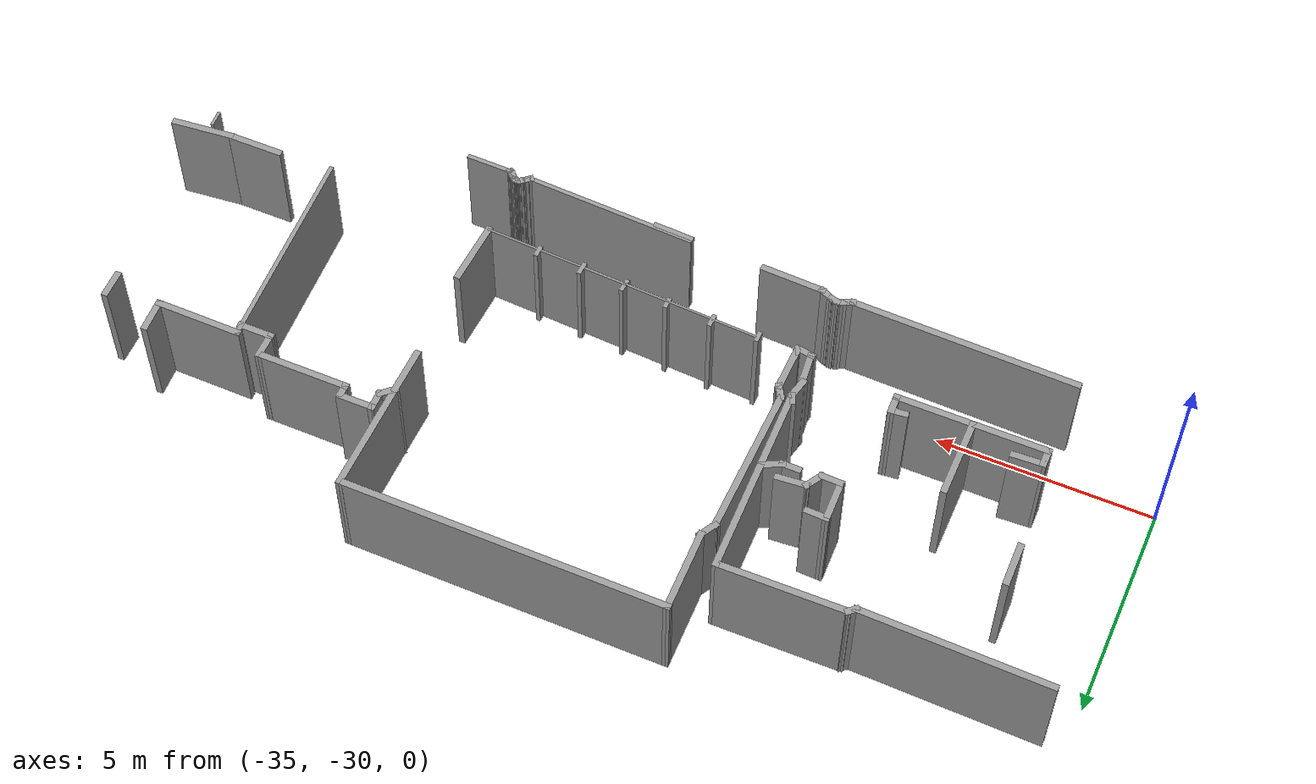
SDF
<sdf version="1.4">
 <model name="3ne_real">
  <pose>-14.229 -33.4428 0 0 -0 0</pose>
  <link name="Wall_203">
   <collision name="Wall_203_Collision">
    <geometry><box><size>0.817392 0.15 2.5</size></box></geometry>
    <pose>0 0 1.25 0 -0 0</pose>
   </collision>
   <visual name="Wall_203_Visual">
    <pose>0 0 1.25 0 -0 0</pose>
    <geometry><box><size>0.817392 0.15 2.5</size></box></geometry>
    <material>
     <script><uri>file://media/materials/scripts/gazebo.material</uri><name>Gazebo/Grey</name></script>
     <ambient>1 1 1 1</ambient>
    </material>
    <meta><layer>0</layer></meta>
   </visual>
   <pose>0.525288 8.69575 0 0 -0 -1.5316</pose>
  </link>
  <link name="Wall_204">
   <collision name="Wall_204_Collision">
    <geometry><box><size>2.05915 0.15 2.5</size></box></geometry>
    <pose>0 0 1.25 0 -0 0</pose>
   </collision>
   <visual name="Wall_204_Visual">
    <pose>0 0 1.25 0 -0 0</pose>
    <geometry><box><size>2.05915 0.15 2.5</size></box></geometry>
    <material>
     <script><uri>file://media/materials/scripts/gazebo.material</uri><name>Gazebo/Grey</name></script>
     <ambient>1 1 1 1</ambient>
    </material>
    <meta><layer>0</layer></meta>
   </visual>
   <pose>-0.416332 8.36903 0 0 -0 3.13455</pose>
  </link>
  <link name="Wall_206">
   <collision name="Wall_206_Collision">
    <geometry><box><size>0.673043 0.15 2.5</size></box></geometry>
    <pose>0 0 1.25 0 -0 0</pose>
   </collision>
   <visual name="Wall_206_Visual">
    <pose>0 0 1.25 0 -0 0</pose>
    <geometry><box><size>0.673043 0.15 2.5</size></box></geometry>
    <material>
     <script><uri>file://media/materials/scripts/gazebo.material</uri><name>Gazebo/Grey</name></script>
     <ambient>1 1 1 1</ambient>
    </material>
    <meta><layer>0</layer></meta>
   </visual>
   <pose>1.72813 8.32318 0 0 -0 -1.5714</pose>
  </link>
  <link name="Wall_212">
   <collision name="Wall_212_Collision">
    <geometry><box><size>1.36607 0.15 2.5</size></box></geometry>
    <pose>0 0 1.25 0 -0 0</pose>
   </collision>
   <visual name="Wall_212_Visual">
    <pose>0 0 1.25 0 -0 0</pose>
    <geometry><box><size>1.36607 0.15 2.5</size></box></geometry>
    <material>
     <script><uri>file://media/materials/scripts/gazebo.material</uri><name>Gazebo/Grey</name></script>
     <ambient>1 1 1 1</ambient>
    </material>
    <meta><layer>0</layer></meta>
   </visual>
   <pose>0.662587 3.68107 0 0 -0 0</pose>
  </link>
  <link name="Wall_213">
   <collision name="Wall_213_Collision">
    <geometry><box><size>1.47714 0.15 2.5</size></box></geometry>
    <pose>0 0 1.25 0 -0 0</pose>
   </collision>
   <visual name="Wall_213_Visual">
    <pose>0 0 1.25 0 -0 0</pose>
    <geometry><box><size>1.47714 0.15 2.5</size></box></geometry>
    <material>
     <script><uri>file://media/materials/scripts/gazebo.material</uri><name>Gazebo/Grey</name></script>
     <ambient>1 1 1 1</ambient>
    </material>
    <meta><layer>0</layer></meta>
   </visual>
   <pose>1.93097 3.74645 0 0 -0 0.098688</pose>
  </link>
  <link name="Wall_217">
   <collision name="Wall_217_Collision">
    <geometry><box><size>0.38327 0.07 2.5</size></box></geometry>
    <pose>0 0 1.25 0 -0 0</pose>
   </collision>
   <visual name="Wall_217_Visual">
    <pose>0 0 1.25 0 -0 0</pose>
    <geometry><box><size>0.38327 0.07 2.5</size></box></geometry>
    <material>
     <script><uri>file://media/materials/scripts/gazebo.material</uri><name>Gazebo/Grey</name></script>
     <ambient>1 1 1 1</ambient>
    </material>
    <meta><layer>0</layer></meta>
   </visual>
   <pose>1.80047 3.38025 0 0 -0 -1.52929</pose>
  </link>
  <link name="Wall_221">
   <collision name="Wall_221_Collision">
    <geometry><box><size>4.85957 0.1 2.5</size></box></geometry>
    <pose>0 0 1.25 0 -0 0</pose>
   </collision>
   <visual name="Wall_221_Visual">
    <pose>0 0 1.25 0 -0 0</pose>
    <geometry><box><size>4.85957 0.1 2.5</size></box></geometry>
    <material>
     <script><uri>file://media/materials/scripts/gazebo.material</uri><name>Gazebo/Grey</name></script>
     <ambient>1 1 1 1</ambient>
    </material>
    <meta><layer>0</layer></meta>
   </visual>
   <pose>-1.30003 5.99725 0 0 -0 -1.54095</pose>
  </link>
  <link name="Wall_226">
   <collision name="Wall_226_Collision">
    <geometry><box><size>0.863671 0.15 2.5</size></box></geometry>
    <pose>0 0 1.25 0 -0 0</pose>
   </collision>
   <visual name="Wall_226_Visual">
    <pose>0 0 1.25 0 -0 0</pose>
    <geometry><box><size>0.863671 0.15 2.5</size></box></geometry>
    <material>
     <script><uri>file://media/materials/scripts/gazebo.material</uri><name>Gazebo/Grey</name></script>
     <ambient>1 1 1 1</ambient>
    </material>
    <meta><layer>0</layer></meta>
   </visual>
   <pose>-1.71326 8.17109 0 0 -0 3.14159</pose>
  </link>
  <link name="Wall_227">
   <collision name="Wall_227_Collision">
    <geometry><box><size>0.663166 0.15 2.5</size></box></geometry>
    <pose>0 0 1.25 0 -0 0</pose>
   </collision>
   <visual name="Wall_227_Visual">
    <pose>0 0 1.25 0 -0 0</pose>
    <geometry><box><size>0.663166 0.15 2.5</size></box></geometry>
    <material>
     <script><uri>file://media/materials/scripts/gazebo.material</uri><name>Gazebo/Grey</name></script>
     <ambient>1 1 1 1</ambient>
    </material>
    <meta><layer>0</layer></meta>
   </visual>
   <pose>-2.06638 8.42757 0 0 -0 1.55631</pose>
  </link>
  <link name="Wall_228">
   <collision name="Wall_228_Collision">
    <geometry><box><size>2.2018 0.15 2.5</size></box></geometry>
    <pose>0 0 1.25 0 -0 0</pose>
   </collision>
   <visual name="Wall_228_Visual">
    <pose>0 0 1.25 0 -0 0</pose>
    <geometry><box><size>2.2018 0.15 2.5</size></box></geometry>
    <material>
     <script><uri>file://media/materials/scripts/gazebo.material</uri><name>Gazebo/Grey</name></script>
     <ambient>1 1 1 1</ambient>
    </material>
    <meta><layer>0</layer></meta>
   </visual>
   <pose>-3.08856 8.68404 0 0 -0 3.14159</pose>
  </link>
  <link name="Wall_230">
   <collision name="Wall_230_Collision">
    <geometry><box><size>0.402758 0.15 2.5</size></box></geometry>
    <pose>0 0 1.25 0 -0 0</pose>
   </collision>
   <visual name="Wall_230_Visual">
    <pose>0 0 1.25 0 -0 0</pose>
    <geometry><box><size>0.402758 0.15 2.5</size></box></geometry>
    <material>
     <script><uri>file://media/materials/scripts/gazebo.material</uri><name>Gazebo/Grey</name></script>
     <ambient>1 1 1 1</ambient>
    </material>
    <meta><layer>0</layer></meta>
   </visual>
   <pose>-4.11446 8.81042 0 0 -0 1.5708</pose>
  </link>
  <link name="Wall_231">
   <collision name="Wall_231_Collision">
    <geometry><box><size>0.900841 0.15 2.5</size></box></geometry>
    <pose>0 0 1.25 0 -0 0</pose>
   </collision>
   <visual name="Wall_231_Visual">
    <pose>0 0 1.25 0 -0 0</pose>
    <geometry><box><size>0.900841 0.15 2.5</size></box></geometry>
    <material>
     <script><uri>file://media/materials/scripts/gazebo.material</uri><name>Gazebo/Grey</name></script>
     <ambient>1 1 1 1</ambient>
    </material>
    <meta><layer>0</layer></meta>
   </visual>
   <pose>-4.48988 8.9368 0 0 -0 3.14159</pose>
  </link>
  <link name="Wall_232">
   <collision name="Wall_232_Collision">
    <geometry><box><size>0.521704 0.15 2.5</size></box></geometry>
    <pose>0 0 1.25 0 -0 0</pose>
   </collision>
   <visual name="Wall_232_Visual">
    <pose>0 0 1.25 0 -0 0</pose>
    <geometry><box><size>0.521704 0.15 2.5</size></box></geometry>
    <material>
     <script><uri>file://media/materials/scripts/gazebo.material</uri><name>Gazebo/Grey</name></script>
     <ambient>1 1 1 1</ambient>
    </material>
    <meta><layer>0</layer></meta>
   </visual>
   <pose>-4.86531 8.75095 0 0 -0 -1.5708</pose>
  </link>
  <link name="Wall_233">
   <collision name="Wall_233_Collision">
    <geometry><box><size>0.487084 0.15 2.5</size></box></geometry>
    <pose>0 0 1.25 0 -0 0</pose>
   </collision>
   <visual name="Wall_233_Visual">
    <pose>0 0 1.25 0 -0 0</pose>
    <geometry><box><size>0.487084 0.15 2.5</size></box></geometry>
    <material>
     <script><uri>file://media/materials/scripts/gazebo.material</uri><name>Gazebo/Grey</name></script>
     <ambient>1 1 1 1</ambient>
    </material>
    <meta><layer>0</layer></meta>
   </visual>
   <pose>-4.99168 8.45359 0 0 -0 -2.41861</pose>
  </link>
  <link name="Wall_234">
   <collision name="Wall_234_Collision">
    <geometry><box><size>1.15404 0.15 2.5</size></box></geometry>
    <pose>0 0 1.25 0 -0 0</pose>
   </collision>
   <visual name="Wall_234_Visual">
    <pose>0 0 1.25 0 -0 0</pose>
    <geometry><box><size>1.15404 0.15 2.5</size></box></geometry>
    <material>
     <script><uri>file://media/materials/scripts/gazebo.material</uri><name>Gazebo/Grey</name></script>
     <ambient>1 1 1 1</ambient>
    </material>
    <meta><layer>0</layer></meta>
   </visual>
   <pose>-5.13293 7.84027 0 0 -0 -1.60042</pose>
  </link>
  <link name="Wall_237">
   <collision name="Wall_237_Collision">
    <geometry><box><size>1.54614 0.15 2.5</size></box></geometry>
    <pose>0 0 1.25 0 -0 0</pose>
   </collision>
   <visual name="Wall_237_Visual">
    <pose>0 0 1.25 0 -0 0</pose>
    <geometry><box><size>1.54614 0.15 2.5</size></box></geometry>
    <material>
     <script><uri>file://media/materials/scripts/gazebo.material</uri><name>Gazebo/Grey</name></script>
     <ambient>1 1 1 1</ambient>
    </material>
    <meta><layer>0</layer></meta>
   </visual>
   <pose>-5.12853 4.44565 0 0 -0 -1.6317</pose>
  </link>
  <link name="Wall_239">
   <collision name="Wall_239_Collision">
    <geometry><box><size>6.5192 0.05 2.5</size></box></geometry>
    <pose>0 0 1.25 0 -0 0</pose>
   </collision>
   <visual name="Wall_239_Visual">
    <pose>0 0 1.25 0 -0 0</pose>
    <geometry><box><size>6.5192 0.05 2.5</size></box></geometry>
    <material>
     <script><uri>file://media/materials/scripts/gazebo.material</uri><name>Gazebo/Grey</name></script>
     <ambient>1 1 1 1</ambient>
    </material>
    <meta><layer>0</layer></meta>
   </visual>
   <pose>-8.40203 3.90375 0 0 -0 3.09366</pose>
  </link>
  <link name="Wall_241">
   <collision name="Wall_241_Collision">
    <geometry><box><size>0.267638 0.1 2.5</size></box></geometry>
    <pose>0 0 1.25 0 -0 0</pose>
   </collision>
   <visual name="Wall_241_Visual">
    <pose>0 0 1.25 0 -0 0</pose>
    <geometry><box><size>0.267638 0.1 2.5</size></box></geometry>
    <material>
     <script><uri>file://media/materials/scripts/gazebo.material</uri><name>Gazebo/Grey</name></script>
     <ambient>1 1 1 1</ambient>
    </material>
    <meta><layer>0</layer></meta>
   </visual>
   <pose>-11.67 4.03975 0 0 -0 -1.5708</pose>
  </link>
  <link name="Wall_243">
   <collision name="Wall_243_Collision">
    <geometry><box><size>0.313133 0.1 2.5</size></box></geometry>
    <pose>0 0 1.25 0 -0 0</pose>
   </collision>
   <visual name="Wall_243_Visual">
    <pose>0 0 1.25 0 -0 0</pose>
    <geometry><box><size>0.313133 0.1 2.5</size></box></geometry>
    <material>
     <script><uri>file://media/materials/scripts/gazebo.material</uri><name>Gazebo/Grey</name></script>
     <ambient>1 1 1 1</ambient>
    </material>
    <meta><layer>0</layer></meta>
   </visual>
   <pose>-10.6005 4.04325 0 0 -0 -1.60365</pose>
  </link>
  <link name="Wall_245">
   <collision name="Wall_245_Collision">
    <geometry><box><size>0.268547 0.1 2.5</size></box></geometry>
    <pose>0 0 1.25 0 -0 0</pose>
   </collision>
   <visual name="Wall_245_Visual">
    <pose>0 0 1.25 0 -0 0</pose>
    <geometry><box><size>0.268547 0.1 2.5</size></box></geometry>
    <material>
     <script><uri>file://media/materials/scripts/gazebo.material</uri><name>Gazebo/Grey</name></script>
     <ambient>1 1 1 1</ambient>
    </material>
    <meta><layer>0</layer></meta>
   </visual>
   <pose>-9.54003 4.00175 0 0 -0 -1.6065</pose>
  </link>
  <link name="Wall_247">
   <collision name="Wall_247_Collision">
    <geometry><box><size>0.320334 0.1 2.5</size></box></geometry>
    <pose>0 0 1.25 0 -0 0</pose>
   </collision>
   <visual name="Wall_247_Visual">
    <pose>0 0 1.25 0 -0 0</pose>
    <geometry><box><size>0.320334 0.1 2.5</size></box></geometry>
    <material>
     <script><uri>file://media/materials/scripts/gazebo.material</uri><name>Gazebo/Grey</name></script>
     <ambient>1 1 1 1</ambient>
    </material>
    <meta><layer>0</layer></meta>
   </visual>
   <pose>-8.50603 3.94325 0 0 -0 -1.66187</pose>
  </link>
  <link name="Wall_249">
   <collision name="Wall_249_Collision">
    <geometry><box><size>0.314125 0.1 2.5</size></box></geometry>
    <pose>0 0 1.25 0 -0 0</pose>
   </collision>
   <visual name="Wall_249_Visual">
    <pose>0 0 1.25 0 -0 0</pose>
    <geometry><box><size>0.314125 0.1 2.5</size></box></geometry>
    <material>
     <script><uri>file://media/materials/scripts/gazebo.material</uri><name>Gazebo/Grey</name></script>
     <ambient>1 1 1 1</ambient>
    </material>
    <meta><layer>0</layer></meta>
   </visual>
   <pose>-7.47453 3.89475 0 0 -0 -1.63147</pose>
  </link>
  <link name="Wall_251">
   <collision name="Wall_251_Collision">
    <geometry><box><size>0.280692 0.1 2.5</size></box></geometry>
    <pose>0 0 1.25 0 -0 0</pose>
   </collision>
   <visual name="Wall_251_Visual">
    <pose>0 0 1.25 0 -0 0</pose>
    <geometry><box><size>0.280692 0.1 2.5</size></box></geometry>
    <material>
     <script><uri>file://media/materials/scripts/gazebo.material</uri><name>Gazebo/Grey</name></script>
     <ambient>1 1 1 1</ambient>
    </material>
    <meta><layer>0</layer></meta>
   </visual>
   <pose>-6.41153 3.85225 0 0 -0 -1.60945</pose>
  </link>
  <link name="Wall_253">
   <collision name="Wall_253_Collision">
    <geometry><box><size>2.64347 0.15 2.5</size></box></geometry>
    <pose>0 0 1.25 0 -0 0</pose>
   </collision>
   <visual name="Wall_253_Visual">
    <pose>0 0 1.25 0 -0 0</pose>
    <geometry><box><size>2.64347 0.15 2.5</size></box></geometry>
    <material>
     <script><uri>file://media/materials/scripts/gazebo.material</uri><name>Gazebo/Grey</name></script>
     <ambient>1 1 1 1</ambient>
    </material>
    <meta><layer>0</layer></meta>
   </visual>
   <pose>-5.09026 9.5885 0 0 -0 1.54849</pose>
  </link>
  <link name="Wall_254">
   <collision name="Wall_254_Collision">
    <geometry><box><size>7.53304 0.15 2.5</size></box></geometry>
    <pose>0 0 1.25 0 -0 0</pose>
   </collision>
   <visual name="Wall_254_Visual">
    <pose>0 0 1.25 0 -0 0</pose>
    <geometry><box><size>7.53304 0.15 2.5</size></box></geometry>
    <material>
     <script><uri>file://media/materials/scripts/gazebo.material</uri><name>Gazebo/Grey</name></script>
     <ambient>1 1 1 1</ambient>
    </material>
    <meta><layer>0</layer></meta>
   </visual>
   <pose>-8.75396 10.8462 0 0 -0 3.13853</pose>
  </link>
  <link name="Wall_255">
   <collision name="Wall_255_Collision">
    <geometry><box><size>1.97045 0.15 2.5</size></box></geometry>
    <pose>0 0 1.25 0 -0 0</pose>
   </collision>
   <visual name="Wall_255_Visual">
    <pose>0 0 1.25 0 -0 0</pose>
    <geometry><box><size>1.97045 0.15 2.5</size></box></geometry>
    <material>
     <script><uri>file://media/materials/scripts/gazebo.material</uri><name>Gazebo/Grey</name></script>
     <ambient>1 1 1 1</ambient>
    </material>
    <meta><layer>0</layer></meta>
   </visual>
   <pose>-12.4342 9.94738 0 0 -0 -1.55838</pose>
  </link>
  <link name="Wall_256">
   <collision name="Wall_256_Collision">
    <geometry><box><size>0.514617 0.15 2.5</size></box></geometry>
    <pose>0 0 1.25 0 -0 0</pose>
   </collision>
   <visual name="Wall_256_Visual">
    <pose>0 0 1.25 0 -0 0</pose>
    <geometry><box><size>0.514617 0.15 2.5</size></box></geometry>
    <material>
     <script><uri>file://media/materials/scripts/gazebo.material</uri><name>Gazebo/Grey</name></script>
     <ambient>1 1 1 1</ambient>
    </material>
    <meta><layer>0</layer></meta>
   </visual>
   <pose>-12.5133 8.87894 0 0 -0 -2.08994</pose>
  </link>
  <link name="Wall_258">
   <collision name="Wall_258_Collision">
    <geometry><box><size>3.57672 0.15 2.5</size></box></geometry>
    <pose>0 0 1.25 0 -0 0</pose>
   </collision>
   <visual name="Wall_258_Visual">
    <pose>0 0 1.25 0 -0 0</pose>
    <geometry><box><size>3.57672 0.15 2.5</size></box></geometry>
    <material>
     <script><uri>file://media/materials/scripts/gazebo.material</uri><name>Gazebo/Grey</name></script>
     <ambient>1 1 1 1</ambient>
    </material>
    <meta><layer>0</layer></meta>
   </visual>
   <pose>-12.649 7.00774 0 0 -0 -1.59719</pose>
  </link>
  <link name="Wall_259">
   <collision name="Wall_259_Collision">
    <geometry><box><size>0.448709 0.15 2.5</size></box></geometry>
    <pose>0 0 1.25 0 -0 0</pose>
   </collision>
   <visual name="Wall_259_Visual">
    <pose>0 0 1.25 0 -0 0</pose>
    <geometry><box><size>0.448709 0.15 2.5</size></box></geometry>
    <material>
     <script><uri>file://media/materials/scripts/gazebo.material</uri><name>Gazebo/Grey</name></script>
     <ambient>1 1 1 1</ambient>
    </material>
    <meta><layer>0</layer></meta>
   </visual>
   <pose>-12.6207 5.16482 0 0 -0 -1.05635</pose>
  </link>
  <link name="Wall_260">
   <collision name="Wall_260_Collision">
    <geometry><box><size>1.1 0.15 2.5</size></box></geometry>
    <pose>0 0 1.25 0 -0 0</pose>
   </collision>
   <visual name="Wall_260_Visual">
    <pose>0 0 1.25 0 -0 0</pose>
    <geometry><box><size>1.1 0.15 2.5</size></box></geometry>
    <material>
     <script><uri>file://media/materials/scripts/gazebo.material</uri><name>Gazebo/Grey</name></script>
     <ambient>1 1 1 1</ambient>
    </material>
    <meta><layer>0</layer></meta>
   </visual>
   <pose>-12.5585 4.55993 0 0 -0 -1.5946</pose>
  </link>
  <link name="Wall_262">
   <collision name="Wall_262_Collision">
    <geometry><box><size>0.247742 0.15 2.5</size></box></geometry>
    <pose>0 0 1.25 0 -0 0</pose>
   </collision>
   <visual name="Wall_262_Visual">
    <pose>0 0 1.25 0 -0 0</pose>
    <geometry><box><size>0.247742 0.15 2.5</size></box></geometry>
    <material>
     <script><uri>file://media/materials/scripts/gazebo.material</uri><name>Gazebo/Grey</name></script>
     <ambient>1 1 1 1</ambient>
    </material>
    <meta><layer>0</layer></meta>
   </visual>
   <pose>-12.5675 4.03625 0 0 -0 -1.52335</pose>
  </link>
  <link name="Wall_263">
   <collision name="Wall_263_Collision">
    <geometry><box><size>0.500587 0.15 2.5</size></box></geometry>
    <pose>0 0 1.25 0 -0 0</pose>
   </collision>
   <visual name="Wall_263_Visual">
    <pose>0 0 1.25 0 -0 0</pose>
    <geometry><box><size>0.500587 0.15 2.5</size></box></geometry>
    <material>
     <script><uri>file://media/materials/scripts/gazebo.material</uri><name>Gazebo/Grey</name></script>
     <ambient>1 1 1 1</ambient>
    </material>
    <meta><layer>0</layer></meta>
   </visual>
   <pose>-12.7386 4.01338 0 0 -0 2.99304</pose>
  </link>
  <link name="Wall_264">
   <collision name="Wall_264_Collision">
    <geometry><box><size>0.851998 0.15 2.5</size></box></geometry>
    <pose>0 0 1.25 0 -0 0</pose>
   </collision>
   <visual name="Wall_264_Visual">
    <pose>0 0 1.25 0 -0 0</pose>
    <geometry><box><size>0.851998 0.15 2.5</size></box></geometry>
    <material>
     <script><uri>file://media/materials/scripts/gazebo.material</uri><name>Gazebo/Grey</name></script>
     <ambient>1 1 1 1</ambient>
    </material>
    <meta><layer>0</layer></meta>
   </visual>
   <pose>-12.9256 4.4085 0 0 -0 1.66625</pose>
  </link>
  <link name="Wall_265">
   <collision name="Wall_265_Collision">
    <geometry><box><size>0.569677 0.15 2.5</size></box></geometry>
    <pose>0 0 1.25 0 -0 0</pose>
   </collision>
   <visual name="Wall_265_Visual">
    <pose>0 0 1.25 0 -0 0</pose>
    <geometry><box><size>0.569677 0.15 2.5</size></box></geometry>
    <material>
     <script><uri>file://media/materials/scripts/gazebo.material</uri><name>Gazebo/Grey</name></script>
     <ambient>1 1 1 1</ambient>
    </material>
    <meta><layer>0</layer></meta>
   </visual>
   <pose>-12.9318 4.94264 0 0 -0 1.34498</pose>
  </link>
  <link name="Wall_267">
   <collision name="Wall_267_Collision">
    <geometry><box><size>0.30705 0.15 2.5</size></box></geometry>
    <pose>0 0 1.25 0 -0 0</pose>
   </collision>
   <visual name="Wall_267_Visual">
    <pose>0 0 1.25 0 -0 0</pose>
    <geometry><box><size>0.30705 0.15 2.5</size></box></geometry>
    <material>
     <script><uri>file://media/materials/scripts/gazebo.material</uri><name>Gazebo/Grey</name></script>
     <ambient>1 1 1 1</ambient>
    </material>
    <meta><layer>0</layer></meta>
   </visual>
   <pose>-12.9153 5.21955 0 0 -0 1.96846</pose>
  </link>
  <link name="Wall_269">
   <collision name="Wall_269_Collision">
    <geometry><box><size>4.55806 0.15 2.5</size></box></geometry>
    <pose>0 0 1.25 0 -0 0</pose>
   </collision>
   <visual name="Wall_269_Visual">
    <pose>0 0 1.25 0 -0 0</pose>
    <geometry><box><size>4.55806 0.15 2.5</size></box></geometry>
    <material>
     <script><uri>file://media/materials/scripts/gazebo.material</uri><name>Gazebo/Grey</name></script>
     <ambient>1 1 1 1</ambient>
    </material>
    <meta><layer>0</layer></meta>
   </visual>
   <pose>-12.9266 7.35079 0 0 -0 1.58973</pose>
  </link>
  <link name="Wall_271">
   <collision name="Wall_271_Collision">
    <geometry><box><size>3.01058 0.15 2.5</size></box></geometry>
    <pose>0 0 1.25 0 -0 0</pose>
   </collision>
   <visual name="Wall_271_Visual">
    <pose>0 0 1.25 0 -0 0</pose>
    <geometry><box><size>3.01058 0.15 2.5</size></box></geometry>
    <material>
     <script><uri>file://media/materials/scripts/gazebo.material</uri><name>Gazebo/Grey</name></script>
     <ambient>1 1 1 1</ambient>
    </material>
    <meta><layer>0</layer></meta>
   </visual>
   <pose>-14.3985 9.53746 0 0 -0 -3.12974</pose>
  </link>
  <link name="Wall_272">
   <collision name="Wall_272_Collision">
    <geometry><box><size>0.32661 0.15 2.5</size></box></geometry>
    <pose>0 0 1.25 0 -0 0</pose>
   </collision>
   <visual name="Wall_272_Visual">
    <pose>0 0 1.25 0 -0 0</pose>
    <geometry><box><size>0.32661 0.15 2.5</size></box></geometry>
    <material>
     <script><uri>file://media/materials/scripts/gazebo.material</uri><name>Gazebo/Grey</name></script>
     <ambient>1 1 1 1</ambient>
    </material>
    <meta><layer>0</layer></meta>
   </visual>
   <pose>-15.8966 9.46397 0 0 -0 -2.44685</pose>
  </link>
  <link name="Wall_273">
   <collision name="Wall_273_Collision">
    <geometry><box><size>4.39082 0.15 2.5</size></box></geometry>
    <pose>0 0 1.25 0 -0 0</pose>
   </collision>
   <visual name="Wall_273_Visual">
    <pose>0 0 1.25 0 -0 0</pose>
    <geometry><box><size>4.39082 0.15 2.5</size></box></geometry>
    <material>
     <script><uri>file://media/materials/scripts/gazebo.material</uri><name>Gazebo/Grey</name></script>
     <ambient>1 1 1 1</ambient>
    </material>
    <meta><layer>0</layer></meta>
   </visual>
   <pose>-18.0844 9.44701 0 0 -0 3.12293</pose>
  </link>
  <link name="Wall_442">
   <collision name="Wall_442_Collision">
    <geometry><box><size>4.01458 0.1 2.5</size></box></geometry>
    <pose>0 0 1.25 0 -0 0</pose>
   </collision>
   <visual name="Wall_442_Visual">
    <pose>0 0 1.25 0 -0 0</pose>
    <geometry><box><size>4.01458 0.1 2.5</size></box></geometry>
    <material>
     <script><uri>file://media/materials/scripts/gazebo.material</uri><name>Gazebo/Grey</name></script>
     <ambient>1 1 1 1</ambient>
    </material>
    <meta><layer>0</layer></meta>
   </visual>
   <pose>-7.3854 2.19232 0 0 -0 -0.044241</pose>
  </link>
  <link name="Wall_444">
   <collision name="Wall_444_Collision">
    <geometry><box><size>0.204908 0.15 2.5</size></box></geometry>
    <pose>0 0 1.25 0 -0 0</pose>
   </collision>
   <visual name="Wall_444_Visual">
    <pose>0 0 1.25 0 -0 0</pose>
    <geometry><box><size>0.204908 0.15 2.5</size></box></geometry>
    <material>
     <script><uri>file://media/materials/scripts/gazebo.material</uri><name>Gazebo/Grey</name></script>
     <ambient>1 1 1 1</ambient>
    </material>
    <meta><layer>0</layer></meta>
   </visual>
   <pose>-5.40878 2.12345 0 0 -0 0.694558</pose>
  </link>
  <link name="Wall_445">
   <collision name="Wall_445_Collision">
    <geometry><box><size>0.188701 0.15 2.5</size></box></geometry>
    <pose>0 0 1.25 0 -0 0</pose>
   </collision>
   <visual name="Wall_445_Visual">
    <pose>0 0 1.25 0 -0 0</pose>
    <geometry><box><size>0.188701 0.15 2.5</size></box></geometry>
    <material>
     <script><uri>file://media/materials/scripts/gazebo.material</uri><name>Gazebo/Grey</name></script>
     <ambient>1 1 1 1</ambient>
    </material>
    <meta><layer>0</layer></meta>
   </visual>
   <pose>-5.37308 2.154 0 0 -0 0.726642</pose>
  </link>
  <link name="Wall_446">
   <collision name="Wall_446_Collision">
    <geometry><box><size>0.188701 0.15 2.5</size></box></geometry>
    <pose>0 0 1.25 0 -0 0</pose>
   </collision>
   <visual name="Wall_446_Visual">
    <pose>0 0 1.25 0 -0 0</pose>
    <geometry><box><size>0.188701 0.15 2.5</size></box></geometry>
    <material>
     <script><uri>file://media/materials/scripts/gazebo.material</uri><name>Gazebo/Grey</name></script>
     <ambient>1 1 1 1</ambient>
    </material>
    <meta><layer>0</layer></meta>
   </visual>
   <pose>-5.34416 2.17971 0 0 -0 0.726642</pose>
  </link>
  <link name="Wall_447">
   <collision name="Wall_447_Collision">
    <geometry><box><size>0.184764 0.15 2.5</size></box></geometry>
    <pose>0 0 1.25 0 -0 0</pose>
   </collision>
   <visual name="Wall_447_Visual">
    <pose>0 0 1.25 0 -0 0</pose>
    <geometry><box><size>0.184764 0.15 2.5</size></box></geometry>
    <material>
     <script><uri>file://media/materials/scripts/gazebo.material</uri><name>Gazebo/Grey</name></script>
     <ambient>1 1 1 1</ambient>
    </material>
    <meta><layer>0</layer></meta>
   </visual>
   <pose>-5.31523 2.20221 0 0 -0 0.588003</pose>
  </link>
  <link name="Wall_448">
   <collision name="Wall_448_Collision">
    <geometry><box><size>0.202713 0.15 2.5</size></box></geometry>
    <pose>0 0 1.25 0 -0 0</pose>
   </collision>
   <visual name="Wall_448_Visual">
    <pose>0 0 1.25 0 -0 0</pose>
    <geometry><box><size>0.202713 0.15 2.5</size></box></geometry>
    <material>
     <script><uri>file://media/materials/scripts/gazebo.material</uri><name>Gazebo/Grey</name></script>
     <ambient>1 1 1 1</ambient>
    </material>
    <meta><layer>0</layer></meta>
   </visual>
   <pose>-5.27988 2.22792 0 0 -0 0.655696</pose>
  </link>
  <link name="Wall_449">
   <collision name="Wall_449_Collision">
    <geometry><box><size>0.175912 0.15 2.5</size></box></geometry>
    <pose>0 0 1.25 0 -0 0</pose>
   </collision>
   <visual name="Wall_449_Visual">
    <pose>0 0 1.25 0 -0 0</pose>
    <geometry><box><size>0.175912 0.15 2.5</size></box></geometry>
    <material>
     <script><uri>file://media/materials/scripts/gazebo.material</uri><name>Gazebo/Grey</name></script>
     <ambient>1 1 1 1</ambient>
    </material>
    <meta><layer>0</layer></meta>
   </visual>
   <pose>-5.24774 2.25042 0 0 -0 0.519146</pose>
  </link>
  <link name="Wall_450">
   <collision name="Wall_450_Collision">
    <geometry><box><size>0.17746 0.15 2.5</size></box></geometry>
    <pose>0 0 1.25 0 -0 0</pose>
   </collision>
   <visual name="Wall_450_Visual">
    <pose>0 0 1.25 0 -0 0</pose>
    <geometry><box><size>0.17746 0.15 2.5</size></box></geometry>
    <material>
     <script><uri>file://media/materials/scripts/gazebo.material</uri><name>Gazebo/Grey</name></script>
     <ambient>1 1 1 1</ambient>
    </material>
    <meta><layer>0</layer></meta>
   </visual>
   <pose>-5.22363 2.26167 0 0 -0 0.358771</pose>
  </link>
  <link name="Wall_451">
   <collision name="Wall_451_Collision">
    <geometry><box><size>0.185353 0.15 2.5</size></box></geometry>
    <pose>0 0 1.25 0 -0 0</pose>
   </collision>
   <visual name="Wall_451_Visual">
    <pose>0 0 1.25 0 -0 0</pose>
    <geometry><box><size>0.185353 0.15 2.5</size></box></geometry>
    <material>
     <script><uri>file://media/materials/scripts/gazebo.material</uri><name>Gazebo/Grey</name></script>
     <ambient>1 1 1 1</ambient>
    </material>
    <meta><layer>0</layer></meta>
   </visual>
   <pose>-5.1931 2.26809 0 0 -0 0.09066</pose>
  </link>
  <link name="Wall_452">
   <collision name="Wall_452_Collision">
    <geometry><box><size>0.172726 0.15 2.5</size></box></geometry>
    <pose>0 0 1.25 0 -0 0</pose>
   </collision>
   <visual name="Wall_452_Visual">
    <pose>0 0 1.25 0 -0 0</pose>
    <geometry><box><size>0.172726 0.15 2.5</size></box></geometry>
    <material>
     <script><uri>file://media/materials/scripts/gazebo.material</uri><name>Gazebo/Grey</name></script>
     <ambient>1 1 1 1</ambient>
    </material>
    <meta><layer>0</layer></meta>
   </visual>
   <pose>-5.16417 2.26809 0 0 -0 -0.141897</pose>
  </link>
  <link name="Wall_453">
   <collision name="Wall_453_Collision">
    <geometry><box><size>0.174477 0.15 2.5</size></box></geometry>
    <pose>0 0 1.25 0 -0 0</pose>
   </collision>
   <visual name="Wall_453_Visual">
    <pose>0 0 1.25 0 -0 0</pose>
    <geometry><box><size>0.174477 0.15 2.5</size></box></geometry>
    <material>
     <script><uri>file://media/materials/scripts/gazebo.material</uri><name>Gazebo/Grey</name></script>
     <ambient>1 1 1 1</ambient>
    </material>
    <meta><layer>0</layer></meta>
   </visual>
   <pose>-5.14168 2.26167 0 0 -0 -0.404892</pose>
  </link>
  <link name="Wall_454">
   <collision name="Wall_454_Collision">
    <geometry><box><size>0.184764 0.15 2.5</size></box></geometry>
    <pose>0 0 1.25 0 -0 0</pose>
   </collision>
   <visual name="Wall_454_Visual">
    <pose>0 0 1.25 0 -0 0</pose>
    <geometry><box><size>0.184764 0.15 2.5</size></box></geometry>
    <material>
     <script><uri>file://media/materials/scripts/gazebo.material</uri><name>Gazebo/Grey</name></script>
     <ambient>1 1 1 1</ambient>
    </material>
    <meta><layer>0</layer></meta>
   </visual>
   <pose>-5.11597 2.2472 0 0 -0 -0.588003</pose>
  </link>
  <link name="Wall_455">
   <collision name="Wall_455_Collision">
    <geometry><box><size>0.18214 0.15 2.5</size></box></geometry>
    <pose>0 0 1.25 0 -0 0</pose>
   </collision>
   <visual name="Wall_455_Visual">
    <pose>0 0 1.25 0 -0 0</pose>
    <geometry><box><size>0.18214 0.15 2.5</size></box></geometry>
    <material>
     <script><uri>file://media/materials/scripts/gazebo.material</uri><name>Gazebo/Grey</name></script>
     <ambient>1 1 1 1</ambient>
    </material>
    <meta><layer>0</layer></meta>
   </visual>
   <pose>-5.08865 2.22792 0 0 -0 -0.643501</pose>
  </link>
  <link name="Wall_456">
   <collision name="Wall_456_Collision">
    <geometry><box><size>0.18214 0.15 2.5</size></box></geometry>
    <pose>0 0 1.25 0 -0 0</pose>
   </collision>
   <visual name="Wall_456_Visual">
    <pose>0 0 1.25 0 -0 0</pose>
    <geometry><box><size>0.18214 0.15 2.5</size></box></geometry>
    <material>
     <script><uri>file://media/materials/scripts/gazebo.material</uri><name>Gazebo/Grey</name></script>
     <ambient>1 1 1 1</ambient>
    </material>
    <meta><layer>0</layer></meta>
   </visual>
   <pose>-5.06294 2.20864 0 0 -0 -0.643501</pose>
  </link>
  <link name="Wall_457">
   <collision name="Wall_457_Collision">
    <geometry><box><size>0.18214 0.15 2.5</size></box></geometry>
    <pose>0 0 1.25 0 -0 0</pose>
   </collision>
   <visual name="Wall_457_Visual">
    <pose>0 0 1.25 0 -0 0</pose>
    <geometry><box><size>0.18214 0.15 2.5</size></box></geometry>
    <material>
     <script><uri>file://media/materials/scripts/gazebo.material</uri><name>Gazebo/Grey</name></script>
     <ambient>1 1 1 1</ambient>
    </material>
    <meta><layer>0</layer></meta>
   </visual>
   <pose>-5.03722 2.18935 0 0 -0 -0.643501</pose>
  </link>
  <link name="Wall_458">
   <collision name="Wall_458_Collision">
    <geometry><box><size>0.18214 0.15 2.5</size></box></geometry>
    <pose>0 0 1.25 0 -0 0</pose>
   </collision>
   <visual name="Wall_458_Visual">
    <pose>0 0 1.25 0 -0 0</pose>
    <geometry><box><size>0.18214 0.15 2.5</size></box></geometry>
    <material>
     <script><uri>file://media/materials/scripts/gazebo.material</uri><name>Gazebo/Grey</name></script>
     <ambient>1 1 1 1</ambient>
    </material>
    <meta><layer>0</layer></meta>
   </visual>
   <pose>-5.01473 2.16685 0 0 -0 -0.927295</pose>
  </link>
  <link name="Wall_459">
   <collision name="Wall_459_Collision">
    <geometry><box><size>0.190907 0.15 2.5</size></box></geometry>
    <pose>0 0 1.25 0 -0 0</pose>
   </collision>
   <visual name="Wall_459_Visual">
    <pose>0 0 1.25 0 -0 0</pose>
    <geometry><box><size>0.190907 0.15 2.5</size></box></geometry>
    <material>
     <script><uri>file://media/materials/scripts/gazebo.material</uri><name>Gazebo/Grey</name></script>
     <ambient>1 1 1 1</ambient>
    </material>
    <meta><layer>0</layer></meta>
   </visual>
   <pose>-4.99062 2.13954 0 0 -0 -0.785398</pose>
  </link>
  <link name="Wall_460">
   <collision name="Wall_460_Collision">
    <geometry><box><size>0.195679 0.15 2.5</size></box></geometry>
    <pose>0 0 1.25 0 -0 0</pose>
   </collision>
   <visual name="Wall_460_Visual">
    <pose>0 0 1.25 0 -0 0</pose>
    <geometry><box><size>0.195679 0.15 2.5</size></box></geometry>
    <material>
     <script><uri>file://media/materials/scripts/gazebo.material</uri><name>Gazebo/Grey</name></script>
     <ambient>1 1 1 1</ambient>
    </material>
    <meta><layer>0</layer></meta>
   </visual>
   <pose>-4.95859 2.11041 0 0 -0 -0.695472</pose>
  </link>
  <link name="Wall_461">
   <collision name="Wall_461_Collision">
    <geometry><box><size>1.10313 0.1 2.5</size></box></geometry>
    <pose>0 0 1.25 0 -0 0</pose>
   </collision>
   <visual name="Wall_461_Visual">
    <pose>0 0 1.25 0 -0 0</pose>
    <geometry><box><size>1.10313 0.1 2.5</size></box></geometry>
    <material>
     <script><uri>file://media/materials/scripts/gazebo.material</uri><name>Gazebo/Grey</name></script>
     <ambient>1 1 1 1</ambient>
    </material>
    <meta><layer>0</layer></meta>
   </visual>
   <pose>-4.43953 2.08775 0 0 -0 -0.015951</pose>
  </link>
  <link name="Wall_464">
   <collision name="Wall_464_Collision">
    <geometry><box><size>0.954246 0.15 2.5</size></box></geometry>
    <pose>0 0 1.25 0 -0 0</pose>
   </collision>
   <visual name="Wall_464_Visual">
    <pose>0 0 1.25 0 -0 0</pose>
    <geometry><box><size>0.954246 0.15 2.5</size></box></geometry>
    <material>
     <script><uri>file://media/materials/scripts/gazebo.material</uri><name>Gazebo/Grey</name></script>
     <ambient>1 1 1 1</ambient>
    </material>
    <meta><layer>0</layer></meta>
   </visual>
   <pose>-8.92636 2.213 0 0 -0 3.09401</pose>
  </link>
  <link name="Wall_553">
   <collision name="Wall_553_Collision">
    <geometry><box><size>5.29248 0.15 2.5</size></box></geometry>
    <pose>0 0 1.25 0 -0 0</pose>
   </collision>
   <visual name="Wall_553_Visual">
    <pose>0 0 1.25 0 -0 0</pose>
    <geometry><box><size>5.29248 0.15 2.5</size></box></geometry>
    <material>
     <script><uri>file://media/materials/scripts/gazebo.material</uri><name>Gazebo/Grey</name></script>
     <ambient>1 1 1 1</ambient>
    </material>
    <meta><layer>0</layer></meta>
   </visual>
   <pose>-15.7882 2.44605 0 0 -0 -0.020064</pose>
  </link>
  <link name="Wall_554">
   <collision name="Wall_554_Collision">
    <geometry><box><size>0.357774 0.15 2.5</size></box></geometry>
    <pose>0 0 1.25 0 -0 0</pose>
   </collision>
   <visual name="Wall_554_Visual">
    <pose>0 0 1.25 0 -0 0</pose>
    <geometry><box><size>0.357774 0.15 2.5</size></box></geometry>
    <material>
     <script><uri>file://media/materials/scripts/gazebo.material</uri><name>Gazebo/Grey</name></script>
     <ambient>1 1 1 1</ambient>
    </material>
    <meta><layer>0</layer></meta>
   </visual>
   <pose>-13.1229 2.43745 0 0 -0 0.426628</pose>
  </link>
  <link name="Wall_555">
   <collision name="Wall_555_Collision">
    <geometry><box><size>0.291797 0.15 2.5</size></box></geometry>
    <pose>0 0 1.25 0 -0 0</pose>
   </collision>
   <visual name="Wall_555_Visual">
    <pose>0 0 1.25 0 -0 0</pose>
    <geometry><box><size>0.291797 0.15 2.5</size></box></geometry>
    <material>
     <script><uri>file://media/materials/scripts/gazebo.material</uri><name>Gazebo/Grey</name></script>
     <ambient>1 1 1 1</ambient>
    </material>
    <meta><layer>0</layer></meta>
   </visual>
   <pose>-12.9596 2.49764 0 0 -0 0.244979</pose>
  </link>
  <link name="Wall_556">
   <collision name="Wall_556_Collision">
    <geometry><box><size>0.291797 0.15 2.5</size></box></geometry>
    <pose>0 0 1.25 0 -0 0</pose>
   </collision>
   <visual name="Wall_556_Visual">
    <pose>0 0 1.25 0 -0 0</pose>
    <geometry><box><size>0.291797 0.15 2.5</size></box></geometry>
    <material>
     <script><uri>file://media/materials/scripts/gazebo.material</uri><name>Gazebo/Grey</name></script>
     <ambient>1 1 1 1</ambient>
    </material>
    <meta><layer>0</layer></meta>
   </visual>
   <pose>-12.822 2.49764 0 0 -0 -0.244979</pose>
  </link>
  <link name="Wall_557">
   <collision name="Wall_557_Collision">
    <geometry><box><size>0.434635 0.15 2.5</size></box></geometry>
    <pose>0 0 1.25 0 -0 0</pose>
   </collision>
   <visual name="Wall_557_Visual">
    <pose>0 0 1.25 0 -0 0</pose>
    <geometry><box><size>0.434635 0.15 2.5</size></box></geometry>
    <material>
     <script><uri>file://media/materials/scripts/gazebo.material</uri><name>Gazebo/Grey</name></script>
     <ambient>1 1 1 1</ambient>
    </material>
    <meta><layer>0</layer></meta>
   </visual>
   <pose>-12.6243 2.42026 0 0 -0 -0.436627</pose>
  </link>
  <link name="Wall_558">
   <collision name="Wall_558_Collision">
    <geometry><box><size>1.5266 0.15 2.5</size></box></geometry>
    <pose>0 0 1.25 0 -0 0</pose>
   </collision>
   <visual name="Wall_558_Visual">
    <pose>0 0 1.25 0 -0 0</pose>
    <geometry><box><size>1.5266 0.15 2.5</size></box></geometry>
    <material>
     <script><uri>file://media/materials/scripts/gazebo.material</uri><name>Gazebo/Grey</name></script>
     <ambient>1 1 1 1</ambient>
    </material>
    <meta><layer>0</layer></meta>
   </visual>
   <pose>-11.8075 2.33428 0 0 -0 -0.037482</pose>
  </link>
  <link name="Wall_638">
   <collision name="Wall_638_Collision">
    <geometry><box><size>3.52928 0.15 2.5</size></box></geometry>
    <pose>0 0 1.25 0 -0 0</pose>
   </collision>
   <visual name="Wall_638_Visual">
    <pose>0 0 1.25 0 -0 0</pose>
    <geometry><box><size>3.52928 0.15 2.5</size></box></geometry>
    <material>
     <script><uri>file://media/materials/scripts/gazebo.material</uri><name>Gazebo/Grey</name></script>
     <ambient>1 1 1 1</ambient>
    </material>
    <meta><layer>0</layer></meta>
   </visual>
   <pose>-16.6249 4.30972 0 0 -0 0</pose>
  </link>
  <link name="Wall_639">
   <collision name="Wall_639_Collision">
    <geometry><box><size>0.509173 0.15 2.5</size></box></geometry>
    <pose>0 0 1.25 0 -0 0</pose>
   </collision>
   <visual name="Wall_639_Visual">
    <pose>0 0 1.25 0 -0 0</pose>
    <geometry><box><size>0.509173 0.15 2.5</size></box></geometry>
    <material>
     <script><uri>file://media/materials/scripts/gazebo.material</uri><name>Gazebo/Grey</name></script>
     <ambient>1 1 1 1</ambient>
    </material>
    <meta><layer>0</layer></meta>
   </visual>
   <pose>-14.9427 4.48915 0 0 -0 1.61244</pose>
  </link>
  <link name="Wall_640">
   <collision name="Wall_640_Collision">
    <geometry><box><size>0.450543 0.15 2.5</size></box></geometry>
    <pose>0 0 1.25 0 -0 0</pose>
   </collision>
   <visual name="Wall_640_Visual">
    <pose>0 0 1.25 0 -0 0</pose>
    <geometry><box><size>0.450543 0.15 2.5</size></box></geometry>
    <material>
     <script><uri>file://media/materials/scripts/gazebo.material</uri><name>Gazebo/Grey</name></script>
     <ambient>1 1 1 1</ambient>
    </material>
    <meta><layer>0</layer></meta>
   </visual>
   <pose>-15.0997 4.65363 0 0 -0 -3.04192</pose>
  </link>
  <link name="Wall_642">
   <collision name="Wall_642_Collision">
    <geometry><box><size>0.493909 0.15 2.5</size></box></geometry>
    <pose>0 0 1.25 0 -0 0</pose>
   </collision>
   <visual name="Wall_642_Visual">
    <pose>0 0 1.25 0 -0 0</pose>
    <geometry><box><size>0.493909 0.15 2.5</size></box></geometry>
    <material>
     <script><uri>file://media/materials/scripts/gazebo.material</uri><name>Gazebo/Grey</name></script>
     <ambient>1 1 1 1</ambient>
    </material>
    <meta><layer>0</layer></meta>
   </visual>
   <pose>-18.3146 4.48167 0 0 -0 1.5708</pose>
  </link>
  <link name="Wall_643">
   <collision name="Wall_643_Collision">
    <geometry><box><size>0.793656 0.15 2.5</size></box></geometry>
    <pose>0 0 1.25 0 -0 0</pose>
   </collision>
   <visual name="Wall_643_Visual">
    <pose>0 0 1.25 0 -0 0</pose>
    <geometry><box><size>0.793656 0.15 2.5</size></box></geometry>
    <material>
     <script><uri>file://media/materials/scripts/gazebo.material</uri><name>Gazebo/Grey</name></script>
     <ambient>1 1 1 1</ambient>
    </material>
    <meta><layer>0</layer></meta>
   </visual>
   <pose>-17.9931 4.66858 0 0 -0 0.046478</pose>
  </link>
  <link name="Wall_645">
   <collision name="Wall_645_Collision">
    <geometry><box><size>1.8845 0.15 2.5</size></box></geometry>
    <pose>0 0 1.25 0 -0 0</pose>
   </collision>
   <visual name="Wall_645_Visual">
    <pose>0 0 1.25 0 -0 0</pose>
    <geometry><box><size>1.8845 0.15 2.5</size></box></geometry>
    <material>
     <script><uri>file://media/materials/scripts/gazebo.material</uri><name>Gazebo/Grey</name></script>
     <ambient>1 1 1 1</ambient>
    </material>
    <meta><layer>0</layer></meta>
   </visual>
   <pose>-16.6399 5.19192 0 0 -0 1.5708</pose>
  </link>
  <link name="Wall_650">
   <collision name="Wall_650_Collision">
    <geometry><box><size>1.04728 0.15 2.5</size></box></geometry>
    <pose>0 0 1.25 0 -0 0</pose>
   </collision>
   <visual name="Wall_650_Visual">
    <pose>0 0 1.25 0 -0 0</pose>
    <geometry><box><size>1.04728 0.15 2.5</size></box></geometry>
    <material>
     <script><uri>file://media/materials/scripts/gazebo.material</uri><name>Gazebo/Grey</name></script>
     <ambient>1 1 1 1</ambient>
    </material>
    <meta><layer>0</layer></meta>
   </visual>
   <pose>-18.5314 7.16566 0 0 -0 1.58746</pose>
  </link>
  <link name="Wall_655">
   <collision name="Wall_655_Collision">
    <geometry><box><size>0.579271 0.15 2.5</size></box></geometry>
    <pose>0 0 1.25 0 -0 0</pose>
   </collision>
   <visual name="Wall_655_Visual">
    <pose>0 0 1.25 0 -0 0</pose>
    <geometry><box><size>0.579271 0.15 2.5</size></box></geometry>
    <material>
     <script><uri>file://media/materials/scripts/gazebo.material</uri><name>Gazebo/Grey</name></script>
     <ambient>1 1 1 1</ambient>
    </material>
    <meta><layer>0</layer></meta>
   </visual>
   <pose>-14.4281 7.65724 0 0 -0 3.1113</pose>
  </link>
  <link name="Wall_656">
   <collision name="Wall_656_Collision">
    <geometry><box><size>1.04753 0.15 2.5</size></box></geometry>
    <pose>0 0 1.25 0 -0 0</pose>
   </collision>
   <visual name="Wall_656_Visual">
    <pose>0 0 1.25 0 -0 0</pose>
    <geometry><box><size>1.04753 0.15 2.5</size></box></geometry>
    <material>
     <script><uri>file://media/materials/scripts/gazebo.material</uri><name>Gazebo/Grey</name></script>
     <ambient>1 1 1 1</ambient>
    </material>
    <meta><layer>0</layer></meta>
   </visual>
   <pose>-14.6296 7.21516 0 0 -0 -1.54182</pose>
  </link>
  <link name="Wall_657">
   <collision name="Wall_657_Collision">
    <geometry><box><size>0.579271 0.15 2.5</size></box></geometry>
    <pose>0 0 1.25 0 -0 0</pose>
   </collision>
   <visual name="Wall_657_Visual">
    <pose>0 0 1.25 0 -0 0</pose>
    <geometry><box><size>0.579271 0.15 2.5</size></box></geometry>
    <material>
     <script><uri>file://media/materials/scripts/gazebo.material</uri><name>Gazebo/Grey</name></script>
     <ambient>1 1 1 1</ambient>
    </material>
    <meta><layer>0</layer></meta>
   </visual>
   <pose>-14.4021 6.76009 0 0 -0 -0.030294</pose>
  </link>
  <link name="Wall_658">
   <collision name="Wall_658_Collision">
    <geometry><box><size>0.546941 0.15 2.5</size></box></geometry>
    <pose>0 0 1.25 0 -0 0</pose>
   </collision>
   <visual name="Wall_658_Visual">
    <pose>0 0 1.25 0 -0 0</pose>
    <geometry><box><size>0.546941 0.15 2.5</size></box></geometry>
    <material>
     <script><uri>file://media/materials/scripts/gazebo.material</uri><name>Gazebo/Grey</name></script>
     <ambient>1 1 1 1</ambient>
    </material>
    <meta><layer>0</layer></meta>
   </visual>
   <pose>-14.0835 6.92262 0 0 -0 1.01914</pose>
  </link>
  <link name="Wall_659">
   <collision name="Wall_659_Collision">
    <geometry><box><size>0.776271 0.15 2.5</size></box></geometry>
    <pose>0 0 1.25 0 -0 0</pose>
   </collision>
   <visual name="Wall_659_Visual">
    <pose>0 0 1.25 0 -0 0</pose>
    <geometry><box><size>0.776271 0.15 2.5</size></box></geometry>
    <material>
     <script><uri>file://media/materials/scripts/gazebo.material</uri><name>Gazebo/Grey</name></script>
     <ambient>1 1 1 1</ambient>
    </material>
    <meta><layer>0</layer></meta>
   </visual>
   <pose>-13.6675 7.11765 0 0 -0 0.083141</pose>
  </link>
  <link name="Wall_661">
   <collision name="Wall_661_Collision">
    <geometry><box><size>0.5 0.15 2.5</size></box></geometry>
    <pose>0 0 1.25 0 -0 0</pose>
   </collision>
   <visual name="Wall_661_Visual">
    <pose>0 0 1.25 0 -0 0</pose>
    <geometry><box><size>0.5 0.15 2.5</size></box></geometry>
    <material>
     <script><uri>file://media/materials/scripts/gazebo.material</uri><name>Gazebo/Grey</name></script>
     <ambient>1 1 1 1</ambient>
    </material>
    <meta><layer>0</layer></meta>
   </visual>
   <pose>-13.5055 6.8056 0 0 -0 0</pose>
  </link>
  <link name="Wall_662">
   <collision name="Wall_662_Collision">
    <geometry><box><size>0.587057 0.15 2.5</size></box></geometry>
    <pose>0 0 1.25 0 -0 0</pose>
   </collision>
   <visual name="Wall_662_Visual">
    <pose>0 0 1.25 0 -0 0</pose>
    <geometry><box><size>0.587057 0.15 2.5</size></box></geometry>
    <material>
     <script><uri>file://media/materials/scripts/gazebo.material</uri><name>Gazebo/Grey</name></script>
     <ambient>1 1 1 1</ambient>
    </material>
    <meta><layer>0</layer></meta>
   </visual>
   <pose>-13.1349 6.90311 0 0 -0 0.462563</pose>
  </link>
  <static>1</static>
 </model>
</sdf>
